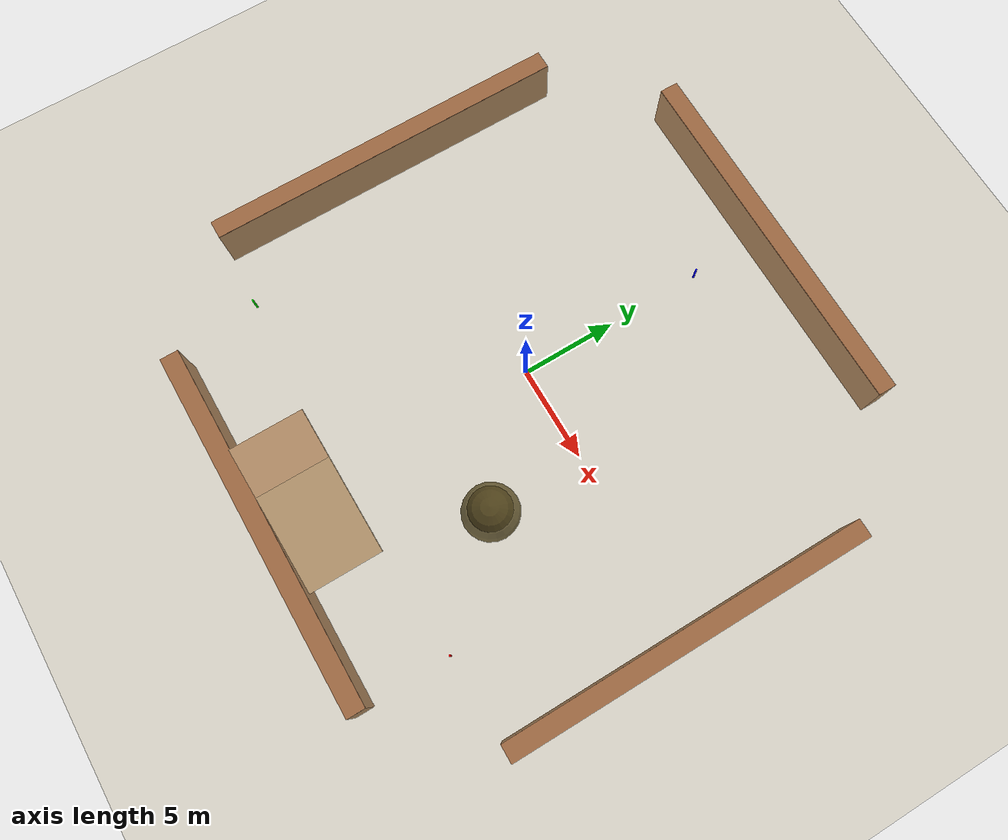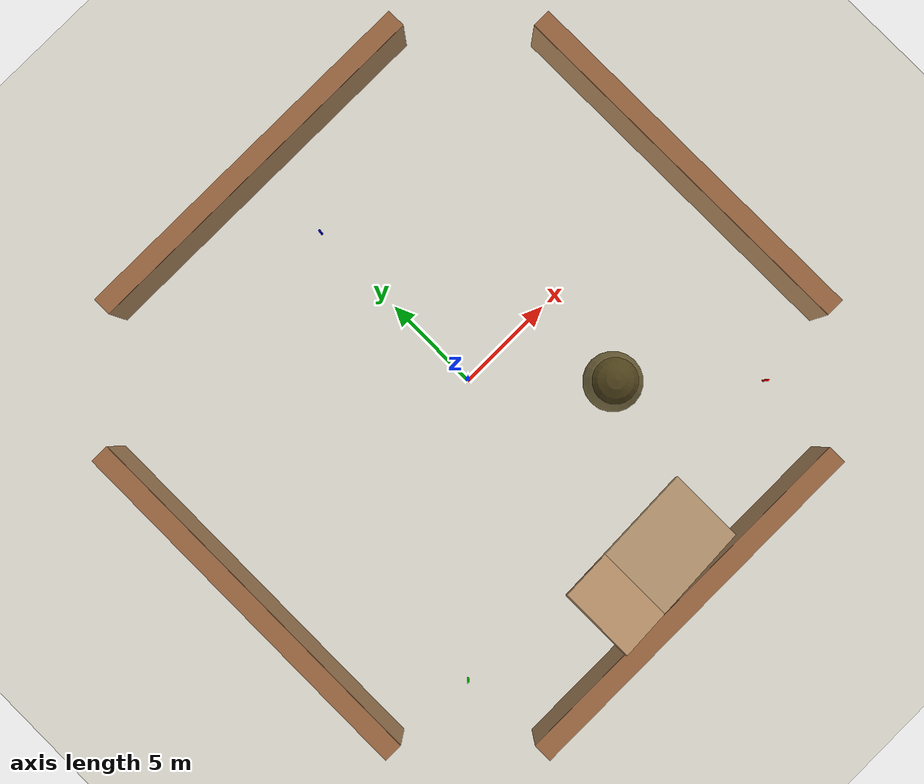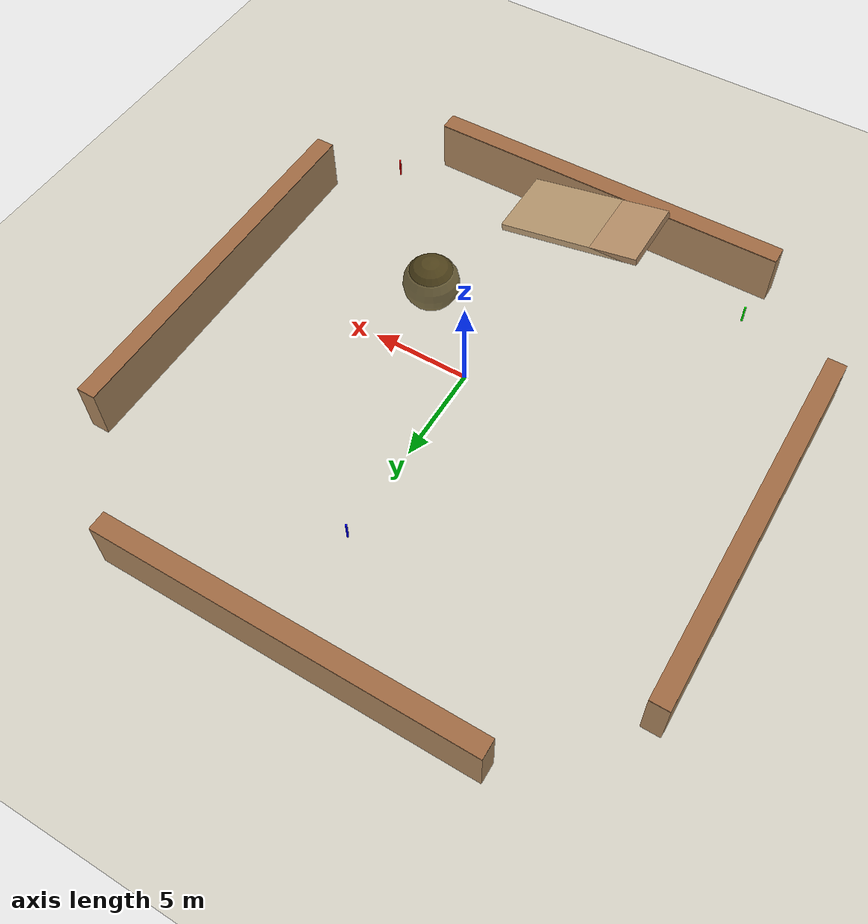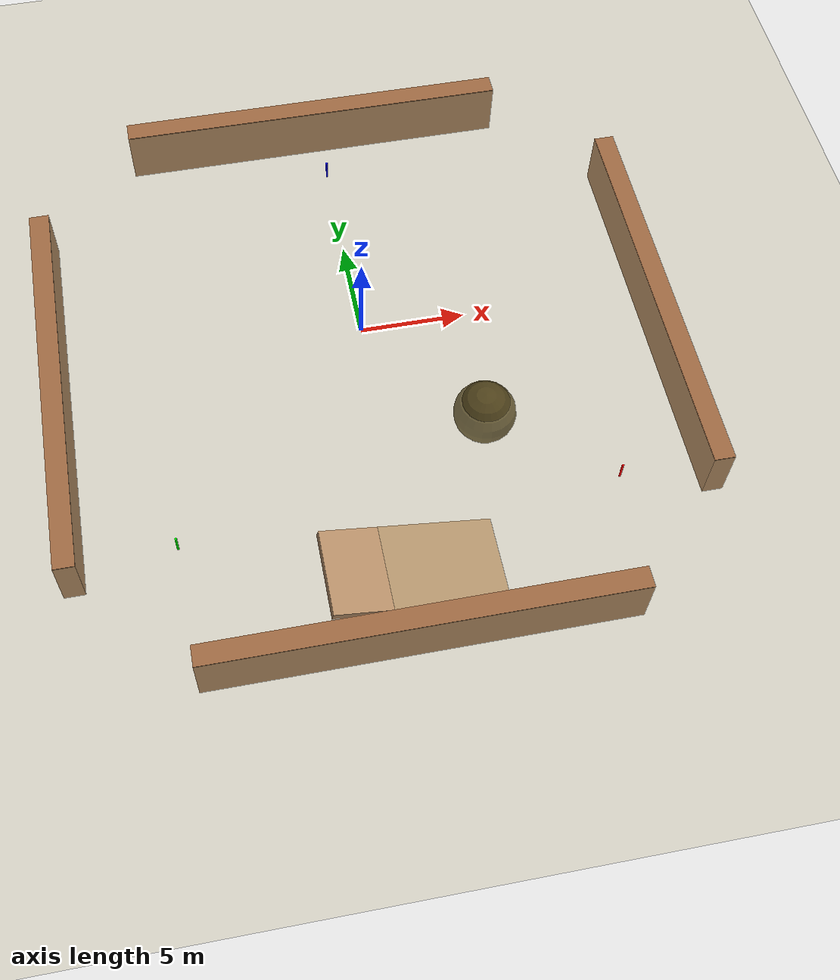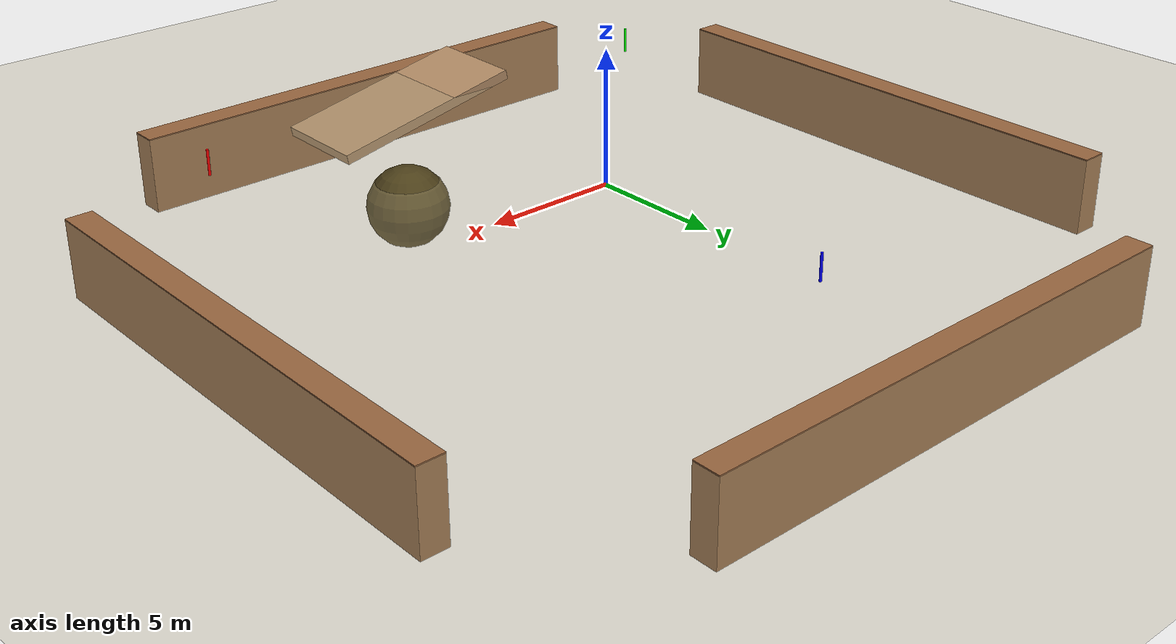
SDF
<?xml version="1.0" ?>
<sdf version="1.7">
  <world name="andino_open_pit">
    <physics name="default" type="ode">
      <gravity>0 0 -9.81</gravity>
      <real_time_update_rate>250</real_time_update_rate>
      <max_step_size>0.004</max_step_size>
    </physics>

    <scene>
      <ambient>0.4 0.4 0.4 1</ambient>
      <background>0.7 0.7 0.8 1</background>
      <shadows>true</shadows>
    </scene>

    <light name="sun" type="directional">
      <cast_shadows>true</cast_shadows>
      <pose>0 0 100 0 0 0</pose>
      <diffuse>0.9 0.9 0.8 1</diffuse>
      <specular>0.2 0.2 0.2 1</specular>
      <direction>-0.5 0.2 -1</direction>
    </light>

    <!-- Terrain — flat ground with low friction (dust surface) -->
    <model name="ground_plane">
      <static>true</static>
      <link name="link">
        <collision name="collision">
          <geometry>
            <plane>
              <normal>0 0 1</normal>
              <size>300 300</size>
            </plane>
          </geometry>
          <surface>
            <friction>
              <ode>
                <mu>0.8</mu>
                <mu2>0.6</mu2>
              </ode>
            </friction>
          </surface>
        </collision>
        <visual name="visual">
          <geometry>
            <plane>
              <normal>0 0 1</normal>
              <size>300 300</size>
            </plane>
          </geometry>
          <material>
            <ambient>0.6 0.55 0.4 1</ambient>
            <diffuse>0.7 0.65 0.5 1</diffuse>
            <specular>0.05 0.05 0.05 1</specular>
          </material>
        </visual>
      </link>
    </model>

    <!-- Pit walls — ring of rectangular columns -->
    <model name="pit_ring">
      <static>true</static>
      <link name="wall_n">
        <pose>0 -15 -1.5 0 0 0</pose>
        <collision name="collision">
          <geometry><box><size>20 1 3</size></box></geometry>
        </collision>
        <visual name="visual">
          <geometry><box><size>20 1 3</size></box></geometry>
          <material><ambient>0.5 0.35 0.2 1</ambient><diffuse>0.6 0.4 0.25 1</diffuse></material>
        </visual>
      </link>
      <link name="wall_s">
        <pose>0 15 -1.5 0 0 0</pose>
        <collision name="collision">
          <geometry><box><size>20 1 3</size></box></geometry>
        </collision>
        <visual name="visual">
          <geometry><box><size>20 1 3</size></box></geometry>
          <material><ambient>0.5 0.35 0.2 1</ambient><diffuse>0.6 0.4 0.25 1</diffuse></material>
        </visual>
      </link>
      <link name="wall_e">
        <pose>15 0 -1.5 0 0 0</pose>
        <collision name="collision">
          <geometry><box><size>1 20 3</size></box></geometry>
        </collision>
        <visual name="visual">
          <geometry><box><size>1 20 3</size></box></geometry>
          <material><ambient>0.5 0.35 0.2 1</ambient><diffuse>0.6 0.4 0.25 1</diffuse></material>
        </visual>
      </link>
      <link name="wall_w">
        <pose>-15 0 -1.5 0 0 0</pose>
        <collision name="collision">
          <geometry><box><size>1 20 3</size></box></geometry>
        </collision>
        <visual name="visual">
          <geometry><box><size>1 20 3</size></box></geometry>
          <material><ambient>0.5 0.35 0.2 1</ambient><diffuse>0.6 0.4 0.25 1</diffuse></material>
        </visual>
      </link>
      <!-- Ramp entrance (north wall gap) -->
      <link name="ramp">
        <pose>0 -12.5 -0.5 0 0.2 0</pose>
        <collision name="collision">
          <geometry><box><size>8 4 0.4</size></box></geometry>
        </collision>
        <visual name="visual">
          <geometry><box><size>8 4 0.4</size></box></geometry>
          <material><ambient>0.6 0.5 0.35 1</ambient><diffuse>0.7 0.55 0.4 1</diffuse></material>
        </visual>
      </link>
    </model>

    <!-- Ore deposit indicator -->
    <model name="ore_deposit">
      <static>true</static>
      <pose>5 -5 -1 0 0 0</pose>
      <link name="ore">
        <visual name="visual">
          <geometry><sphere><radius>1.5</radius></sphere></geometry>
          <material><ambient>0.3 0.25 0.1 1</ambient><emissive>0.08 0.06 0.02 1</emissive></material>
        </visual>
        <collision name="collision">
          <geometry><sphere><radius>1.5</radius></sphere></geometry>
        </collision>
      </link>
    </model>

    <!-- Survey waypoint markers (visual only) -->
    <model name="waypoint_1">
      <static>true</static>
      <pose>10 -10 0.5 0 0 0</pose>
      <link name="pole">
        <visual name="visual">
          <geometry><cylinder><radius>0.05</radius><length>1</length></cylinder></geometry>
          <material><ambient>1 0 0 1</ambient><diffuse>1 0 0 1</diffuse></material>
        </visual>
      </link>
    </model>
    <model name="waypoint_2">
      <static>true</static>
      <pose>-10 -10 0.5 0 0 0</pose>
      <link name="pole">
        <visual name="visual">
          <geometry><cylinder><radius>0.05</radius><length>1</length></cylinder></geometry>
          <material><ambient>0 1 0 1</ambient><diffuse>0 1 0 1</diffuse></material>
        </visual>
      </link>
    </model>
    <model name="waypoint_3">
      <static>true</static>
      <pose>0 10 0.5 0 0 0</pose>
      <link name="pole">
        <visual name="visual">
          <geometry><cylinder><radius>0.05</radius><length>1</length></cylinder></geometry>
          <material><ambient>0 0 1 1</ambient><diffuse>0 0 1 1</diffuse></material>
        </visual>
      </link>
    </model>

    <!-- Moderate wind for disturbance testing -->
    <wind>
      <linear_velocity>2 0.5 0</linear_velocity>
    </wind>
  </world>
</sdf>
